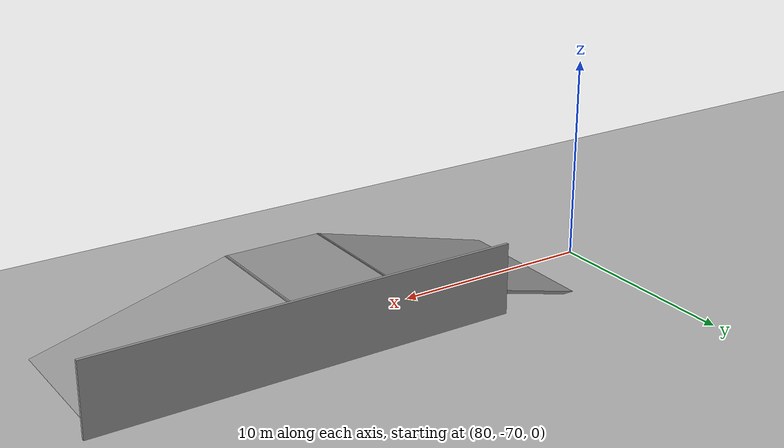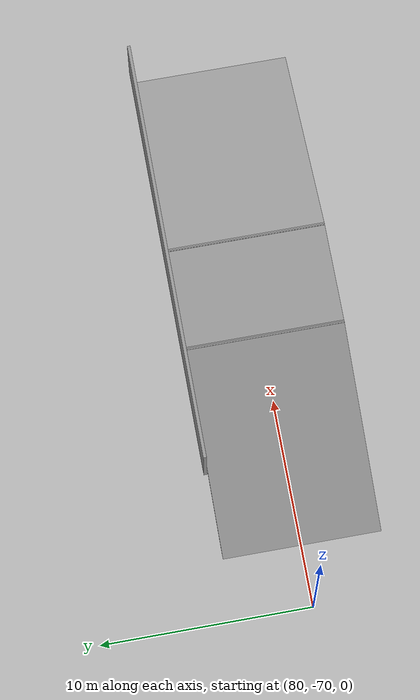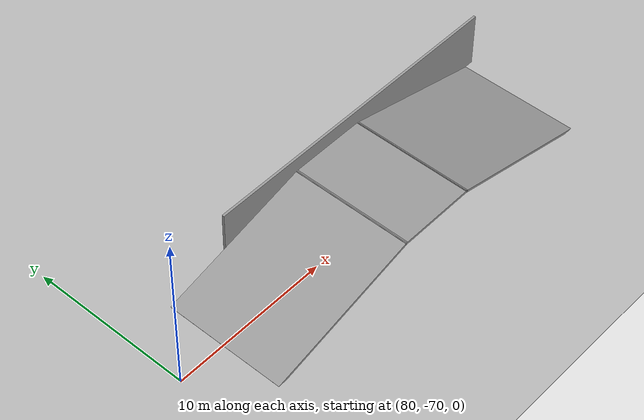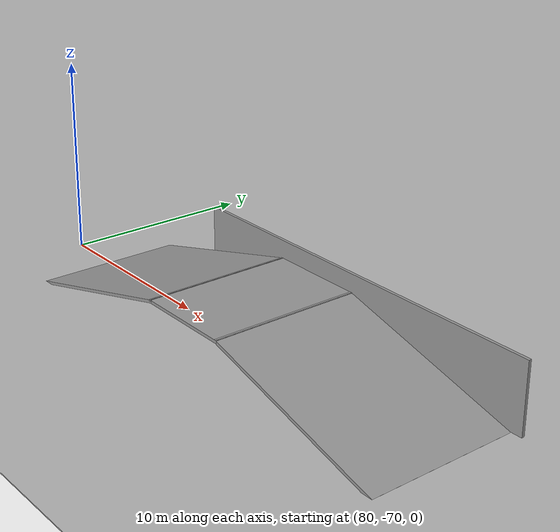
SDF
<sdf version="1.6">
 <world name="default">
  <model name="ground">
   <pose>75 -41.8 0 0 0 1.57</pose>
   <static>1</static>
   <link name="ground">
    <collision name="ground_coll"><geometry><box><size>83.6 150 0.05</size></box></geometry></collision>
    <visual name="ground_vis">
     <geometry><box><size>83.6 150  0.05</size></box></geometry>
     <material><script><uri>./course.material</uri><name>course</name></script></material>
    </visual>
   </link>
  </model>
  <model name="hill">
   <pose>95 -66.3 1.4 1.5708 0 0</pose>
   <link name="Wall_0">
    <collision name="Wall_0_Collision">
     <geometry><box><size>10 0.15 7.5</size></box></geometry>
     <pose>0 0 3.75 0 -0 0</pose>
    </collision>
    <visual name="Wall_0_Visual">
     <pose>0 0 3.75 0 -0 0</pose>
     <geometry><box><size>10 0.15 7.5</size></box></geometry>
     <material>
      <script><uri>file://media/materials/scripts/gazebo.material</uri><name>Gazebo/Grey</name></script>
      <ambient>1 1 1 1</ambient>
     </material>
     <meta><layer>0</layer></meta>
    </visual>
    <pose>-7.18227 -0.149543 0 0 -0 0.261773</pose>
   </link>
   <link name="Wall_1">
    <collision name="Wall_1_Collision">
     <geometry><box><size>5 0.15 7.5</size></box></geometry>
     <pose>0 0 3.75 0 -0 0</pose>
    </collision>
    <visual name="Wall_1_Visual">
     <pose>0 0 3.75 0 -0 0</pose>
     <geometry><box><size>5 0.15 7.5</size></box></geometry>
     <material>
      <script><uri>file://media/materials/scripts/gazebo.material</uri><name>Gazebo/Grey</name></script>
      <ambient>1 1 1 1</ambient>
     </material>
     <meta><layer>0</layer></meta>
    </visual>
    <pose>-0.000266 1.12496 0 0 -0 0</pose>
   </link>
   <link name="Wall_2">
    <collision name="Wall_2_Collision">
     <geometry><box><size>10 0.15 7.5</size></box></geometry>
     <pose>0 0 3.75 0 -0 0</pose>
    </collision>
    <visual name="Wall_2_Visual">
     <pose>0 0 3.75 0 -0 0</pose>
     <geometry><box><size>10 0.15 7.5</size></box></geometry>
     <material>
      <script><uri>file://media/materials/scripts/gazebo.material</uri><name>Gazebo/Grey</name></script>
      <ambient>1 1 1 1</ambient>
     </material>
     <meta><layer>0</layer></meta>
    </visual>
    <pose>7.18223 -0.149543 0 0 -0 -0.261747</pose>
   </link>
   <static>1</static>
  </model>
  <model name="wall1">
   <pose>97.327797 -66.312996 0 0 -0 0</pose>
   <link name="Wall_2">
    <collision name="Wall_2_Collision">
     <geometry><box><size>20.5 0.15 3.5</size></box></geometry>
     <pose>0 0 1.75 0 -0 0</pose>
    </collision>
    <visual name="Wall_2_Visual">
     <pose>0 0 1.75 0 -0 0</pose>
     <geometry><box><size>20.5 0.15 3.5</size></box></geometry>
     <material>
      <script><uri>file://media/materials/scripts/gazebo.material</uri><name>Gazebo/Grey</name></script>
      <ambient>1 1 1 1</ambient>
     </material>
     <meta><layer>0</layer></meta>
    </visual>
    <pose>-0 0.1025 0 0 -0 0</pose>
   </link>
   <static>1</static>
  </model>
  <include><uri>model://sun</uri></include>
 </world>
</sdf>
